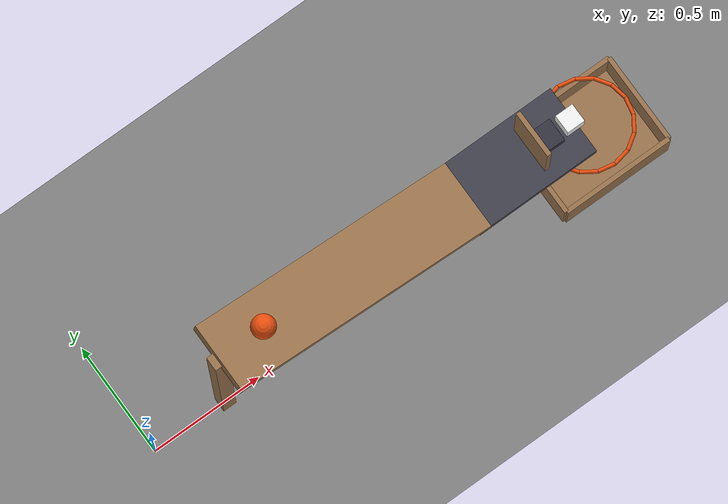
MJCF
<mujoco model="ramp_ball_paddle_slider_block_hoop_box">
  <compiler angle="radian"/>
  <option timestep="0.002"/>
  <worldbody>
    <geom name="floor" type="plane" size="6 6 0.1" friction="0.8 0.005 0.002"/>
    <body name="ramp">
      <geom name="ramp_deck" type="box" pos="0.92 0 0.935" size="0.600354 0.15 0.02" euler="0 0.261139 0" friction="0.8 0.001 0.0005" rgba="0.6 0.45 0.3 1"/>
      <geom name="ramp_leg" type="box" pos="0.34 0 0.545" size="0.03 0.03 0.545" friction="0.8 0.001 0.0005" rgba="0.6 0.45 0.3 1"/>
    </body>
    <body name="ball" pos="0.551292 0 1.10599">
      <freejoint/>
      <geom name="ball" type="sphere" pos="0 0 0" size="0.05" mass="0.15" condim="6" friction="0.8 0.001 0.0005" rgba="0.9 0.3 0.05 1"/>
    </body>
    <body name="ledge">
      <geom name="ledge" type="box" pos="1.725 0 0.78" size="0.275 0.15 0.02" friction="0.3 0.001 0.0005" rgba="0.25 0.25 0.3 1"/>
    </body>
    <body name="paddle" pos="1.8 0 1.115">
      <joint name="paddle_hinge" type="hinge" pos="0 0 0" axis="0 1 0" limited="true" range="-1.74533 0.0872665" damping="0.001"/>
      <geom name="paddle" type="box" pos="0 0 -0.15" size="0.01 0.1 0.15" mass="0.4" rgba="0.6 0.45 0.3 1"/>
    </body>
    <body name="slider" pos="1.87 0 0.825">
      <freejoint/>
      <geom name="slider" type="box" pos="0 0 0" size="0.05 0.05 0.025" mass="0.1" friction="0.3 0.001 0.0005" rgba="0.2 0.2 0.25 1"/>
    </body>
    <body name="block" pos="1.98 0 0.84">
      <freejoint/>
      <geom name="block" type="box" pos="0 0 0" size="0.04 0.04 0.04" mass="0.1" friction="0.3 0.001 0.0005" solref="0.01 1" rgba="0.95 0.95 0.95 1"/>
    </body>
    <body name="hoop">
      <geom name="hoop_00" type="capsule" size="0.008" fromto="2.268 0 0.45 2.25369 0.0719445 0.45" rgba="0.9 0.3 0.05 1"/>
      <geom name="hoop_01" type="capsule" size="0.008" fromto="2.25369 0.0719445 0.45 2.21294 0.132936 0.45" rgba="0.9 0.3 0.05 1"/>
      <geom name="hoop_02" type="capsule" size="0.008" fromto="2.21294 0.132936 0.45 2.15194 0.173689 0.45" rgba="0.9 0.3 0.05 1"/>
      <geom name="hoop_03" type="capsule" size="0.008" fromto="2.15194 0.173689 0.45 2.08 0.188 0.45" rgba="0.9 0.3 0.05 1"/>
      <geom name="hoop_04" type="capsule" size="0.008" fromto="2.08 0.188 0.45 2.00806 0.173689 0.45" rgba="0.9 0.3 0.05 1"/>
      <geom name="hoop_05" type="capsule" size="0.008" fromto="2.00806 0.173689 0.45 1.94706 0.132936 0.45" rgba="0.9 0.3 0.05 1"/>
      <geom name="hoop_06" type="capsule" size="0.008" fromto="1.94706 0.132936 0.45 1.90631 0.0719445 0.45" rgba="0.9 0.3 0.05 1"/>
      <geom name="hoop_07" type="capsule" size="0.008" fromto="1.90631 0.0719445 0.45 1.892 2.30234e-17 0.45" rgba="0.9 0.3 0.05 1"/>
      <geom name="hoop_08" type="capsule" size="0.008" fromto="1.892 2.30234e-17 0.45 1.90631 -0.0719445 0.45" rgba="0.9 0.3 0.05 1"/>
      <geom name="hoop_09" type="capsule" size="0.008" fromto="1.90631 -0.0719445 0.45 1.94706 -0.132936 0.45" rgba="0.9 0.3 0.05 1"/>
      <geom name="hoop_10" type="capsule" size="0.008" fromto="1.94706 -0.132936 0.45 2.00806 -0.173689 0.45" rgba="0.9 0.3 0.05 1"/>
      <geom name="hoop_11" type="capsule" size="0.008" fromto="2.00806 -0.173689 0.45 2.08 -0.188 0.45" rgba="0.9 0.3 0.05 1"/>
      <geom name="hoop_12" type="capsule" size="0.008" fromto="2.08 -0.188 0.45 2.15194 -0.173689 0.45" rgba="0.9 0.3 0.05 1"/>
      <geom name="hoop_13" type="capsule" size="0.008" fromto="2.15194 -0.173689 0.45 2.21294 -0.132936 0.45" rgba="0.9 0.3 0.05 1"/>
      <geom name="hoop_14" type="capsule" size="0.008" fromto="2.21294 -0.132936 0.45 2.25369 -0.0719445 0.45" rgba="0.9 0.3 0.05 1"/>
      <geom name="hoop_15" type="capsule" size="0.008" fromto="2.25369 -0.0719445 0.45 2.268 -4.60467e-17 0.45" rgba="0.9 0.3 0.05 1"/>
    </body>
    <body name="box">
      <geom name="box_base" type="box" pos="2.1 0 0.01" size="0.25 0.2 0.01" rgba="0.6 0.45 0.3 1"/>
      <geom name="box_near_wall" type="box" pos="1.85 0 0.1" size="0.01 0.2 0.1" rgba="0.6 0.45 0.3 1"/>
      <geom name="box_far_wall" type="box" pos="2.35 0 0.1" size="0.01 0.2 0.1" rgba="0.6 0.45 0.3 1"/>
      <geom name="box_left_wall" type="box" pos="2.1 0.2 0.1" size="0.25 0.01 0.1" rgba="0.6 0.45 0.3 1"/>
      <geom name="box_right_wall" type="box" pos="2.1 -0.2 0.1" size="0.25 0.01 0.1" rgba="0.6 0.45 0.3 1"/>
    </body>
  </worldbody>
  <keyframe>
    <key name="start" qpos="0.551292 0 1.10599 1 0 0 0 0 1.87 0 0.825 1 0 0 0 1.98 0 0.84 1 0 0 0" qvel="0 0 0 0 0 0 0 0 0 0 0 0 0 0 0 0 0 0 0"/>
  </keyframe>
</mujoco>
